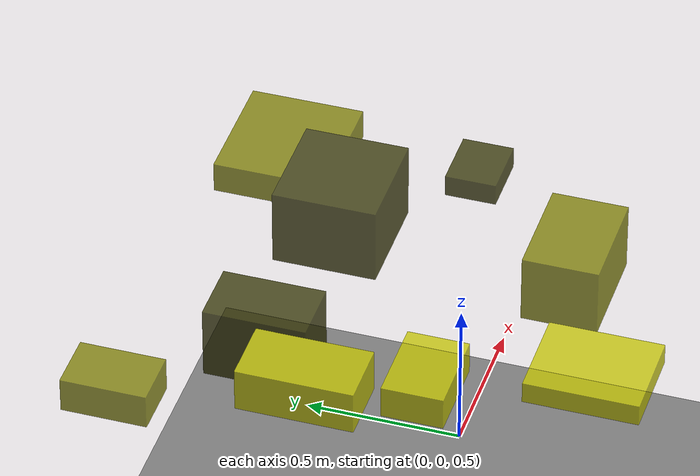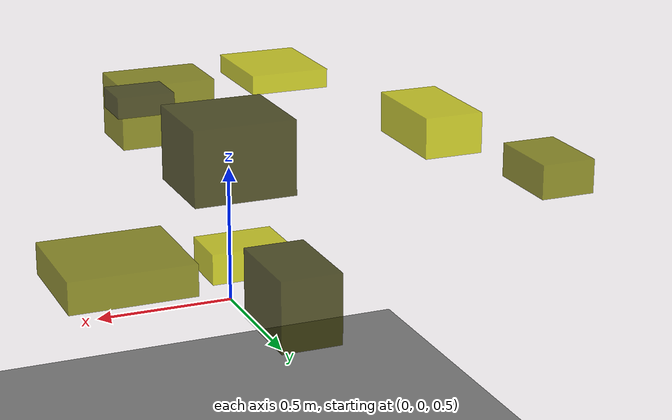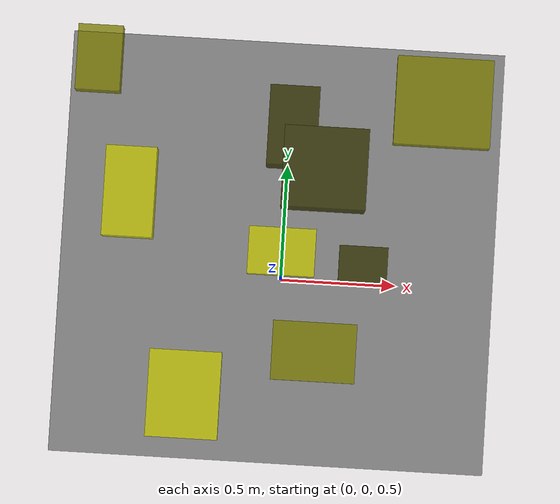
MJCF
<?xml version="1.0"?>
<mujoco model="obstacle_scene">
  <compiler angle="radian" coordinate="local"/>
  <option timestep="0.001" gravity="0 0 -9.81"/>

  <asset>
    <material name="obstacle_mat" rgba="0.8 0.8 0.0 0.8"/>
    <material name="ground_mat" rgba="0.5 0.5 0.5 1"/>
  </asset>

  <worldbody>
    <!-- Ground plane -->
    <geom name="ground" type="plane" size="3 3 0.1" material="ground_mat"/>

    <!-- Obstacles -->
    <body name="obstacle_0" pos="0.156641 0.438128 1.209975">
      <geom name="obs_0" type="box" size="0.173592 0.166102 0.127548" rgba="0.2 0.2 0.0 0.8"/>
    </body>
    <body name="obstacle_1" pos="0.153834 -0.314556 1.160655">
      <geom name="obs_1" type="box" size="0.171837 0.121065 0.113787" rgba="0.5 0.5 0.0 0.8"/>
    </body>
    <body name="obstacle_2" pos="-0.369534 -0.518299 1.191558">
      <geom name="obs_2" type="box" size="0.148393 0.179931 0.035304" rgba="0.8 0.8 0.0 0.8"/>
    </body>
    <body name="obstacle_3" pos="0.015505 0.644776 0.753246">
      <geom name="obs_3" type="box" size="0.105914 0.169206 0.124192" rgba="0.2 0.2 0.0 0.8"/>
    </body>
    <body name="obstacle_4" pos="0.640532 0.764708 0.981378">
      <geom name="obs_4" type="box" size="0.201477 0.185612 0.051847" rgba="0.5 0.5 0.0 0.8"/>
    </body>
    <body name="obstacle_5" pos="-0.003253 0.113096 0.708106">
      <geom name="obs_5" type="box" size="0.143706 0.101426 0.055996" rgba="0.8 0.8 0.0 0.8"/>
    </body>
    <body name="obstacle_6" pos="0.334068 0.044413 1.295827">
      <geom name="obs_6" type="box" size="0.098782 0.081236 0.035708" rgba="0.2 0.2 0.0 0.8"/>
    </body>
    <body name="obstacle_7" pos="-0.801310 0.848461 1.152871">
      <geom name="obs_7" type="box" size="0.092331 0.135462 0.057322" rgba="0.5 0.5 0.0 0.8"/>
    </body>
    <body name="obstacle_8" pos="-0.641425 0.300603 1.178407">
      <geom name="obs_8" type="box" size="0.104752 0.185483 0.071532" rgba="0.8 0.8 0.0 0.8"/>
    </body>
  </worldbody>
</mujoco>
